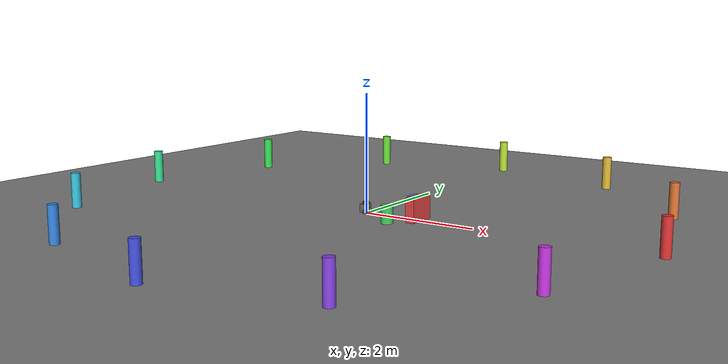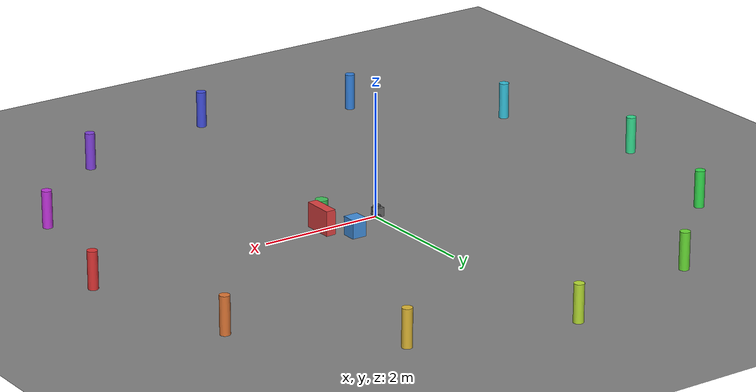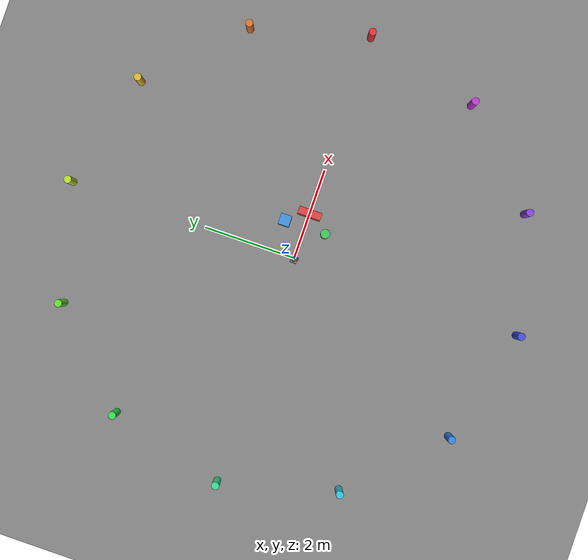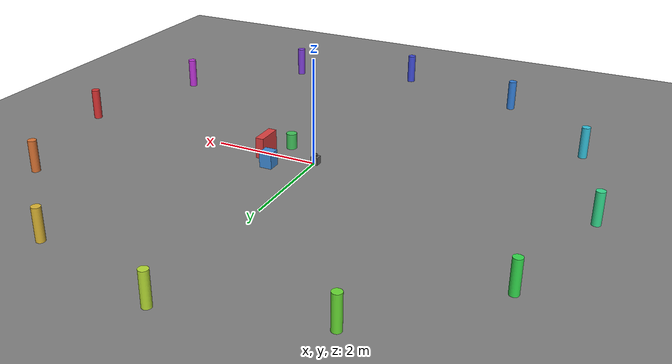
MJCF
<mujoco model="turtlebot3_burger_world">
  <compiler angle="radian"/>

  <option timestep="0.001" gravity="0 0 -9.81" integrator="implicit"/>

  <visual>
    <global offwidth="320" offheight="240"/>
    <map znear="0.05" zfar="10"/>
  </visual>

  <asset>
    <texture name="grid" type="2d" builtin="checker" width="512" height="512" rgb1="1 1 1" rgb2="0 0 0"/>
    <material name="grid" texture="grid" texrepeat="4 4" texuniform="true" reflectance="0.2"/>
    <texture name="ground_checker" type="2d" builtin="checker" width="128" height="128"
             rgb1="0.85 0.85 0.85" rgb2="0.65 0.65 0.65"/>
    <material name="ground_mat" texture="ground_checker" texrepeat="4 4" reflectance="0"/>
    <material name="red_mat" rgba="1 0 0 1"/>
    <material name="green_mat" rgba="0 1 0 1"/>
    <material name="blue_mat" rgba="0 0.2 1 1"/>
    <material name="sensor_mat" rgba="0.1 0.1 0.1 1"/>
    <material name="lens_mat" rgba="0.02 0.02 0.02 1"/>
    <material name="camera_forward_mat" rgba="1 1 0 1"/>

  </asset>

  <worldbody>
    <geom name="ground" type="plane" size="10 10 0.05" pos="0 0 0" material="grid" friction="1.0"/>

    <body name="obstacle_front" pos="1.0 0.0 0.2">
      <geom name="obstacle_front_geom" type="box" size="0.08 0.25 0.2" rgba="0.85 0.25 0.25 1"/>
    </body>

    <body name="obstacle_left" pos="0.7 0.45 0.15">
      <geom name="obstacle_left_geom" type="box" size="0.12 0.12 0.15" rgba="0.25 0.55 0.85 1"/>
    </body>

    <body name="obstacle_right" pos="0.7 -0.45 0.15">
      <geom name="obstacle_right_geom" type="cylinder" size="0.1 0.15" rgba="0.25 0.75 0.35 1"/>
    </body>

    <body name="ring_obstacle_000" pos="5.0 0.0 0.3">
      <geom type="cylinder" size="0.08 0.3" rgba="0.85 0.20 0.20 1"/>
    </body>
    <body name="ring_obstacle_030" pos="4.330 2.500 0.3">
      <geom type="cylinder" size="0.08 0.3" rgba="0.85 0.45 0.20 1"/>
    </body>
    <body name="ring_obstacle_060" pos="2.500 4.330 0.3">
      <geom type="cylinder" size="0.08 0.3" rgba="0.85 0.70 0.20 1"/>
    </body>
    <body name="ring_obstacle_090" pos="0.0 5.0 0.3">
      <geom type="cylinder" size="0.08 0.3" rgba="0.70 0.85 0.20 1"/>
    </body>
    <body name="ring_obstacle_120" pos="-2.500 4.330 0.3">
      <geom type="cylinder" size="0.08 0.3" rgba="0.40 0.85 0.20 1"/>
    </body>
    <body name="ring_obstacle_150" pos="-4.330 2.500 0.3">
      <geom type="cylinder" size="0.08 0.3" rgba="0.20 0.85 0.30 1"/>
    </body>
    <body name="ring_obstacle_180" pos="-5.0 0.0 0.3">
      <geom type="cylinder" size="0.08 0.3" rgba="0.20 0.85 0.55 1"/>
    </body>
    <body name="ring_obstacle_210" pos="-4.330 -2.500 0.3">
      <geom type="cylinder" size="0.08 0.3" rgba="0.20 0.75 0.85 1"/>
    </body>
    <body name="ring_obstacle_240" pos="-2.500 -4.330 0.3">
      <geom type="cylinder" size="0.08 0.3" rgba="0.20 0.50 0.85 1"/>
    </body>
    <body name="ring_obstacle_270" pos="0.0 -5.0 0.3">
      <geom type="cylinder" size="0.08 0.3" rgba="0.25 0.30 0.85 1"/>
    </body>
    <body name="ring_obstacle_300" pos="2.500 -4.330 0.3">
      <geom type="cylinder" size="0.08 0.3" rgba="0.50 0.25 0.85 1"/>
    </body>
    <body name="ring_obstacle_330" pos="4.330 -2.500 0.3">
      <geom type="cylinder" size="0.08 0.3" rgba="0.75 0.20 0.85 1"/>
    </body>

    <body name="base_footprint" pos="0 0 0.0">
      <freejoint/>
      <body name="base_link" pos="0 0 0.01">
        <inertial pos="0 0 0" quat="0.994532 -0.0072214 -0.0815456 -0.0648458" mass="0.825735" diaginertia="0.00221987 0.00211778 0.00200059"/>
        <geom size="0.07 0.07 0.0715" pos="-0.032 0 0.07" type="box" rgba="0.4 0.4 0.4 1"/>

        <body name="color_sensor_body" pos="0.056 0 0.1">
          <geom name="color_sensor_lens" type="cylinder" size="0.0125 0.006" pos="0 0 0"
                euler="0 1.57079632679 0" material="lens_mat"/>
          <camera name="color_camera" mode="fixed" pos="0 0 0" xyaxes="0 -1 0 0 0 1"/>
        </body>

        <body name="wheel_left_link" pos="0 0.08 0.023" quat="0.707388 -0.706825 0 0">
          <inertial pos="0 0 0" quat="-0.000890159 0.706886 0.000889646 0.707326" mass="0.0284989" diaginertia="2.07126e-05 1.11924e-05 1.11756e-05"/>
          <joint name="wheel_left_joint" type="hinge" pos="0 0 0" axis="0 0 1"/>
          <geom size="0.033 0.009" type="cylinder" rgba="0.3 0.3 0.3 1" friction="2.0 0.005 0.0001"/>
        </body>

        <body name="wheel_right_link" pos="0 -0.08 0.023" quat="0.707388 -0.706825 0 0">
          <inertial pos="0 0 0" quat="-0.000890159 0.706886 0.000889646 0.707326" mass="0.0284989" diaginertia="2.07126e-05 1.11924e-05 1.11756e-05"/>
          <joint name="wheel_right_joint" type="hinge" pos="0 0 0" axis="0 0 1"/>
          <geom size="0.033 0.009" type="cylinder" rgba="0.3 0.3 0.3 1" friction="2.0 0.005 0.0001"/>
        </body>

        <body name="caster_back_link" pos="-0.081 0 0" quat="0.707388 -0.706825 0 0">
          <inertial pos="0 0 0" mass="0.005" diaginertia="0.001 0.001 0.001"/>
          <joint name="caster_back_ball_joint" type="ball" damping="0.0005" armature="0.00001"/>
          <geom size="0.01" pos="0 0 0" type="sphere" friction="0.02 0.001 0.001" solref="0.02 1" contype="0" conaffinity="0"/>
        </body>

        <body name="imu_link" pos="-0.032 0 0.068"/>

        <body name="base_scan" pos="-0.032 0 0.172">
          <inertial pos="0 0 0" mass="0.114" diaginertia="0.001 0.001 0.001"/>
          <geom size="0.055 0.01575" pos="0.015 0 -0.0065" type="cylinder" rgba="0.3 0.3 0.3 1"/>
        </body>
      </body>
    </body>
  </worldbody>

  <actuator>
    <velocity name="left_motor" joint="wheel_left_joint" kv="0.75" ctrllimited="true" ctrlrange="-12 12"/>
    <velocity name="right_motor" joint="wheel_right_joint" kv="0.75" ctrllimited="true" ctrlrange="-12 12"/>
  </actuator>
</mujoco>
